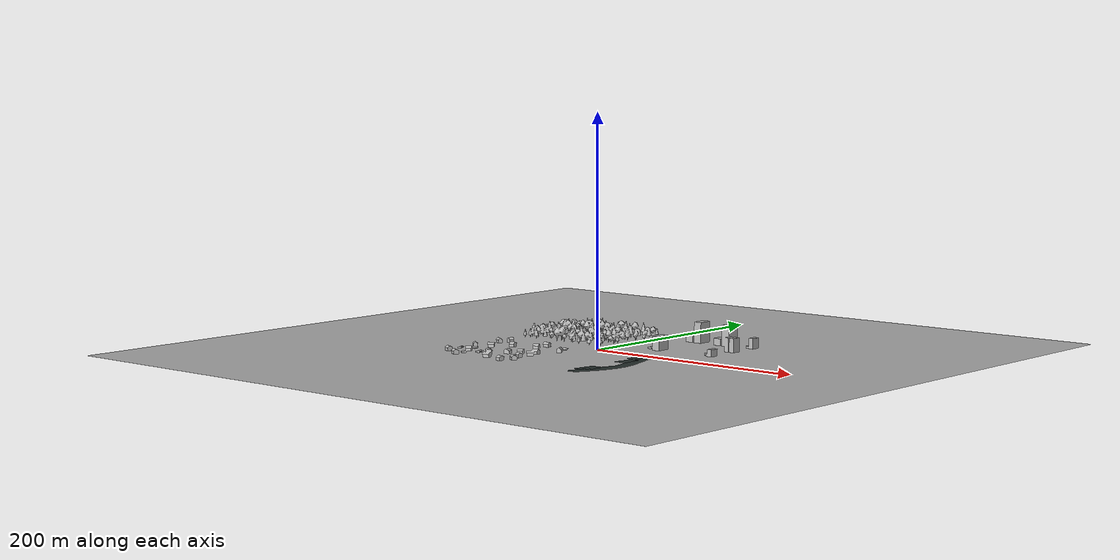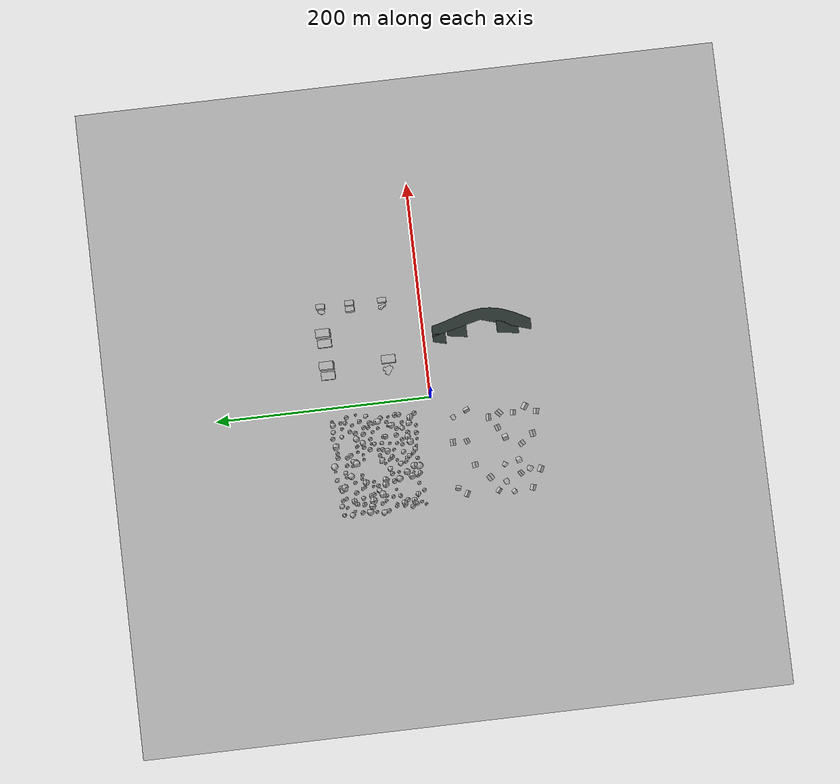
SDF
<?xml version="1.0"?>
<sdf version="1.9">
  <model name="region_scenery">
    <static>true</static>
    <link name="link">
      <collision name="ground_collision">
        <geometry><plane><normal>0 0 1</normal><size>600 600</size></plane></geometry>
      </collision>
      <visual name="ground">
        <geometry><mesh><uri>model://region_scenery/meshes/ground.obj</uri></mesh></geometry>
      </visual>
      <visual name="buildings">
        <geometry><mesh><uri>model://region_scenery/meshes/buildings.obj</uri></mesh></geometry>
      </visual>
      <visual name="trees">
        <geometry><mesh><uri>model://region_scenery/meshes/trees.obj</uri></mesh></geometry>
      </visual>
      <visual name="river_0">
        <geometry><mesh><uri>model://region_scenery/meshes/river_0.obj</uri></mesh></geometry>
        <material><ambient>0.10 0.13 0.13 1</ambient><diffuse>0.16 0.20 0.19 1</diffuse><specular>0.7 0.7 0.7 1</specular>
          <pbr><metal><roughness>0.08</roughness><metalness>0.0</metalness></metal></pbr></material>
        <cast_shadows>false</cast_shadows>
        <plugin filename="gz-sim-thermal-system" name="gz::sim::systems::Thermal"><temperature>281.0</temperature></plugin>
      </visual>
      <visual name="flood_1">
        <geometry><mesh><uri>model://region_scenery/meshes/flood_1.obj</uri></mesh></geometry>
        <material><ambient>0.10 0.13 0.13 1</ambient><diffuse>0.16 0.20 0.19 1</diffuse><specular>0.7 0.7 0.7 1</specular>
          <pbr><metal><roughness>0.08</roughness><metalness>0.0</metalness></metal></pbr></material>
        <cast_shadows>false</cast_shadows>
        <plugin filename="gz-sim-thermal-system" name="gz::sim::systems::Thermal"><temperature>279.0</temperature></plugin>
      </visual>
      <visual name="flood_2">
        <geometry><mesh><uri>model://region_scenery/meshes/flood_2.obj</uri></mesh></geometry>
        <material><ambient>0.10 0.13 0.13 1</ambient><diffuse>0.16 0.20 0.19 1</diffuse><specular>0.7 0.7 0.7 1</specular>
          <pbr><metal><roughness>0.08</roughness><metalness>0.0</metalness></metal></pbr></material>
        <cast_shadows>false</cast_shadows>
        <plugin filename="gz-sim-thermal-system" name="gz::sim::systems::Thermal"><temperature>279.0</temperature></plugin>
      </visual>
      <visual name="flood_3">
        <geometry><mesh><uri>model://region_scenery/meshes/flood_3.obj</uri></mesh></geometry>
        <material><ambient>0.10 0.13 0.13 1</ambient><diffuse>0.16 0.20 0.19 1</diffuse><specular>0.7 0.7 0.7 1</specular>
          <pbr><metal><roughness>0.08</roughness><metalness>0.0</metalness></metal></pbr></material>
        <cast_shadows>false</cast_shadows>
        <plugin filename="gz-sim-thermal-system" name="gz::sim::systems::Thermal"><temperature>279.0</temperature></plugin>
      </visual>
    </link>
  </model>
</sdf>
